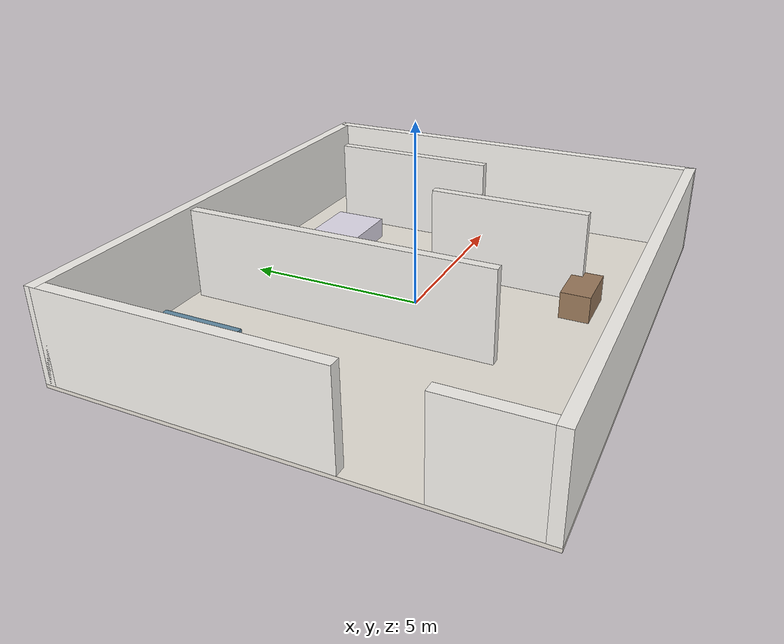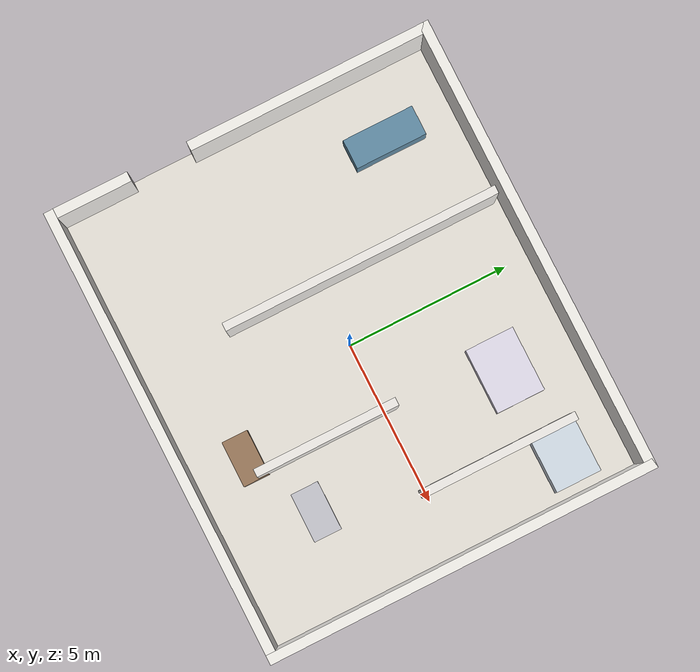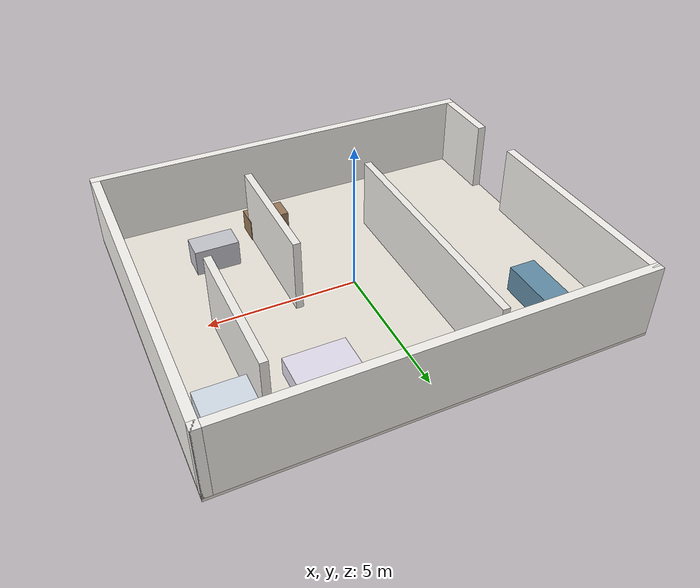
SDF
<?xml version="1.0" ?>
<sdf version="1.7">
  <world name="apartment_test">
    <gravity>0 0 -9.8</gravity>
    <physics name="default_physics" default="1" type="ode">
      <max_step_size>0.001</max_step_size>
      <real_time_factor>1.0</real_time_factor>
      <real_time_update_rate>1000</real_time_update_rate>
    </physics>

    <scene>
      <ambient>0.45 0.45 0.45 1</ambient>
      <background>0.82 0.86 0.9 1</background>
      <shadows>true</shadows>
    </scene>

    <include>
      <uri>model://sun</uri>
    </include>

    <model name="apartment_floor">
      <static>true</static>
      <link name="floor_link">
        <collision name="floor_collision">
          <pose>0 0 -0.05 0 0 0</pose>
          <geometry>
            <box>
              <size>14 12 0.1</size>
            </box>
          </geometry>
        </collision>
        <visual name="floor_visual">
          <pose>0 0 -0.05 0 0 0</pose>
          <geometry>
            <box>
              <size>14 12 0.1</size>
            </box>
          </geometry>
          <material>
            <ambient>0.88 0.86 0.82 1</ambient>
            <diffuse>0.92 0.9 0.86 1</diffuse>
          </material>
        </visual>
      </link>
    </model>

    <model name="apartment_shell">
      <static>true</static>
      <link name="shell_link">
        <collision name="north_wall_collision">
          <pose>0 5.85 1.25 0 0 0</pose>
          <geometry>
            <box>
              <size>14 0.3 2.5</size>
            </box>
          </geometry>
        </collision>
        <collision name="south_wall_collision">
          <pose>0 -5.85 1.25 0 0 0</pose>
          <geometry>
            <box>
              <size>14 0.3 2.5</size>
            </box>
          </geometry>
        </collision>
        <collision name="east_wall_collision">
          <pose>6.85 0 1.25 0 0 0</pose>
          <geometry>
            <box>
              <size>0.3 12 2.5</size>
            </box>
          </geometry>
        </collision>
        <collision name="west_wall_upper_collision">
          <pose>-6.85 2.15 1.25 0 0 0</pose>
          <geometry>
            <box>
              <size>0.3 7.4 2.5</size>
            </box>
          </geometry>
        </collision>
        <collision name="west_wall_lower_collision">
          <pose>-6.85 -4.55 1.25 0 0 0</pose>
          <geometry>
            <box>
              <size>0.3 2.3 2.5</size>
            </box>
          </geometry>
        </collision>

        <collision name="living_room_divider_collision">
          <pose>-1.9 1.3 1.25 0 0 0</pose>
          <geometry>
            <box>
              <size>0.25 8.5 2.5</size>
            </box>
          </geometry>
        </collision>
        <collision name="kitchen_divider_collision">
          <pose>2.1 -1.8 1.25 0 0 0</pose>
          <geometry>
            <box>
              <size>0.25 4.4 2.5</size>
            </box>
          </geometry>
        </collision>
        <collision name="bathroom_divider_collision">
          <pose>4.7 2.25 1.25 0 0 0</pose>
          <geometry>
            <box>
              <size>0.25 4.8 2.5</size>
            </box>
          </geometry>
        </collision>

        <visual name="north_wall_visual">
          <pose>0 5.85 1.25 0 0 0</pose>
          <geometry>
            <box>
              <size>14 0.3 2.5</size>
            </box>
          </geometry>
          <material>
            <ambient>0.95 0.94 0.92 1</ambient>
            <diffuse>0.97 0.96 0.94 1</diffuse>
          </material>
        </visual>
        <visual name="south_wall_visual">
          <pose>0 -5.85 1.25 0 0 0</pose>
          <geometry>
            <box>
              <size>14 0.3 2.5</size>
            </box>
          </geometry>
          <material>
            <ambient>0.95 0.94 0.92 1</ambient>
            <diffuse>0.97 0.96 0.94 1</diffuse>
          </material>
        </visual>
        <visual name="east_wall_visual">
          <pose>6.85 0 1.25 0 0 0</pose>
          <geometry>
            <box>
              <size>0.3 12 2.5</size>
            </box>
          </geometry>
          <material>
            <ambient>0.95 0.94 0.92 1</ambient>
            <diffuse>0.97 0.96 0.94 1</diffuse>
          </material>
        </visual>
        <visual name="west_wall_upper_visual">
          <pose>-6.85 2.15 1.25 0 0 0</pose>
          <geometry>
            <box>
              <size>0.3 7.4 2.5</size>
            </box>
          </geometry>
          <material>
            <ambient>0.95 0.94 0.92 1</ambient>
            <diffuse>0.97 0.96 0.94 1</diffuse>
          </material>
        </visual>
        <visual name="west_wall_lower_visual">
          <pose>-6.85 -4.55 1.25 0 0 0</pose>
          <geometry>
            <box>
              <size>0.3 2.3 2.5</size>
            </box>
          </geometry>
          <material>
            <ambient>0.95 0.94 0.92 1</ambient>
            <diffuse>0.97 0.96 0.94 1</diffuse>
          </material>
        </visual>
        <visual name="living_room_divider_visual">
          <pose>-1.9 1.3 1.25 0 0 0</pose>
          <geometry>
            <box>
              <size>0.25 8.5 2.5</size>
            </box>
          </geometry>
          <material>
            <ambient>0.93 0.92 0.9 1</ambient>
            <diffuse>0.95 0.94 0.92 1</diffuse>
          </material>
        </visual>
        <visual name="kitchen_divider_visual">
          <pose>2.1 -1.8 1.25 0 0 0</pose>
          <geometry>
            <box>
              <size>0.25 4.4 2.5</size>
            </box>
          </geometry>
          <material>
            <ambient>0.93 0.92 0.9 1</ambient>
            <diffuse>0.95 0.94 0.92 1</diffuse>
          </material>
        </visual>
        <visual name="bathroom_divider_visual">
          <pose>4.7 2.25 1.25 0 0 0</pose>
          <geometry>
            <box>
              <size>0.25 4.8 2.5</size>
            </box>
          </geometry>
          <material>
            <ambient>0.93 0.92 0.9 1</ambient>
            <diffuse>0.95 0.94 0.92 1</diffuse>
          </material>
        </visual>
      </link>
    </model>

    <model name="sofa">
      <static>true</static>
      <pose>-4.8 3.55 0.45 0 0 1.5708</pose>
      <link name="link">
        <collision name="collision">
          <geometry>
            <box>
              <size>2.2 0.9 0.9</size>
            </box>
          </geometry>
        </collision>
        <visual name="visual">
          <geometry>
            <box>
              <size>2.2 0.9 0.9</size>
            </box>
          </geometry>
          <material>
            <ambient>0.34 0.49 0.58 1</ambient>
            <diffuse>0.39 0.56 0.66 1</diffuse>
          </material>
        </visual>
      </link>
    </model>

    <model name="bed">
      <static>true</static>
      <pose>2.65 3.6 0.3 0 0 0</pose>
      <link name="link">
        <collision name="collision">
          <geometry>
            <box>
              <size>2.0 1.5 0.6</size>
            </box>
          </geometry>
        </collision>
        <visual name="visual">
          <geometry>
            <box>
              <size>2.0 1.5 0.6</size>
            </box>
          </geometry>
          <material>
            <ambient>0.86 0.84 0.9 1</ambient>
            <diffuse>0.9 0.88 0.94 1</diffuse>
          </material>
        </visual>
      </link>
    </model>

    <model name="dining_table">
      <static>true</static>
      <pose>1.55 -4.1 0.37 0 0 0</pose>
      <link name="link">
        <collision name="collision">
          <geometry>
            <box>
              <size>1.4 0.8 0.74</size>
            </box>
          </geometry>
        </collision>
        <visual name="visual">
          <geometry>
            <box>
              <size>1.4 0.8 0.74</size>
            </box>
          </geometry>
          <material>
            <ambient>0.54 0.42 0.31 1</ambient>
            <diffuse>0.61 0.48 0.36 1</diffuse>
          </material>
        </visual>
      </link>
    </model>

    <model name="kitchen_island">
      <static>true</static>
      <pose>3.8 -3.0 0.45 0 0 0</pose>
      <link name="link">
        <collision name="collision">
          <geometry>
            <box>
              <size>1.5 0.85 0.9</size>
            </box>
          </geometry>
        </collision>
        <visual name="visual">
          <geometry>
            <box>
              <size>1.5 0.85 0.9</size>
            </box>
          </geometry>
          <material>
            <ambient>0.72 0.72 0.75 1</ambient>
            <diffuse>0.78 0.78 0.81 1</diffuse>
          </material>
        </visual>
      </link>
    </model>

    <model name="bathroom_block">
      <static>true</static>
      <pose>5.55 4.0 0.45 0 0 0</pose>
      <link name="link">
        <collision name="collision">
          <geometry>
            <box>
              <size>1.7 1.4 0.9</size>
            </box>
          </geometry>
        </collision>
        <visual name="visual">
          <geometry>
            <box>
              <size>1.7 1.4 0.9</size>
            </box>
          </geometry>
          <material>
            <ambient>0.79 0.83 0.87 1</ambient>
            <diffuse>0.84 0.88 0.92 1</diffuse>
          </material>
        </visual>
      </link>
    </model>
  </world>
</sdf>
